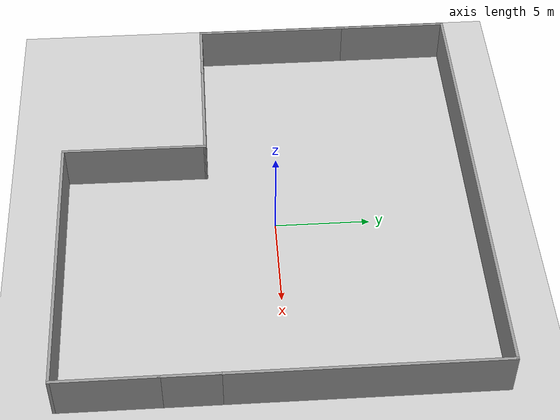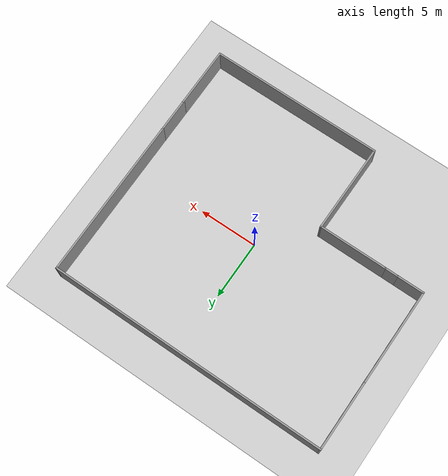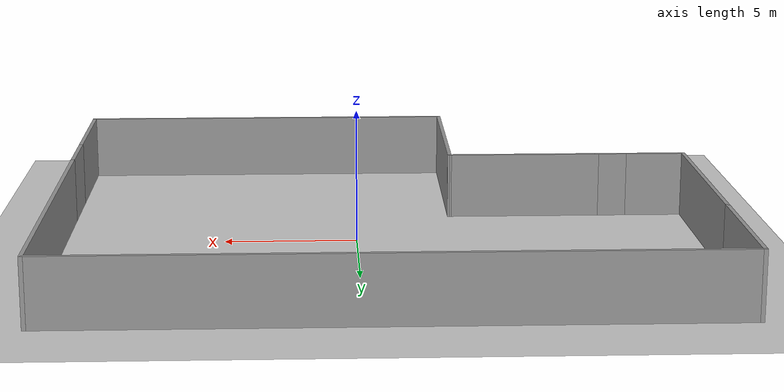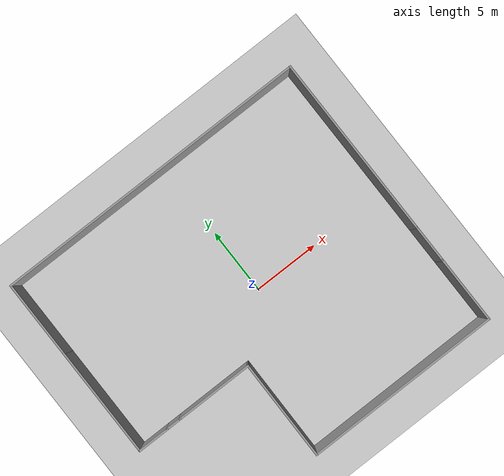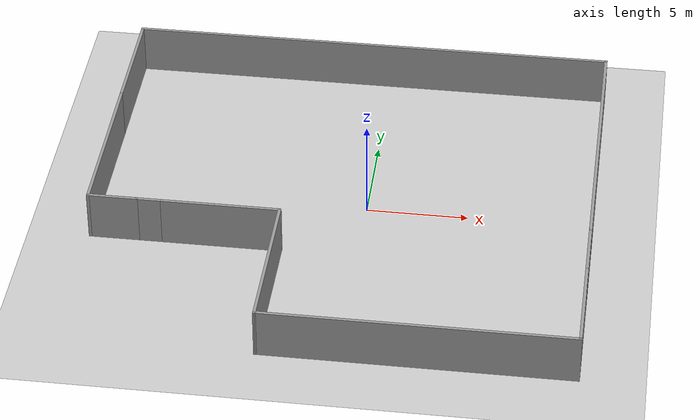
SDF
<sdf version="1.6">
 <world name="default">
  <light name="sun" type="directional">
   <pose>0 0 10 0 -0 0</pose>
   <diffuse>0.8 0.8 0.8 1</diffuse>
   <specular>0.2 0.2 0.2 1</specular>
   <attenuation>
    <range>1000</range>
    <constant>0.9</constant>
    <linear>0.01</linear>
    <quadratic>0.001</quadratic>
   </attenuation>
   <direction>-0.5 0.1 -0.9</direction>
  </light>
  <model name="ground_plane">
   <static>1</static>
   <link name="link">
    <collision name="collision">
     <geometry><plane><normal>0 0 1</normal><size>100 100</size></plane></geometry>
     <surface><friction><ode><mu>100</mu><mu2>50</mu2></ode></friction></surface>
    </collision>
    <visual name="visual">
     <cast_shadows>0</cast_shadows>
     <geometry><plane><normal>0 0 1</normal><size>100 100</size></plane></geometry>
     <material>
      <script><uri>file://media/materials/scripts/gazebo.material</uri><name>Gazebo/Grey</name></script>
     </material>
    </visual>
   </link>
  </model>
  <gravity>0 0 -9.8</gravity>
  <magnetic_field>6e-06 2.3e-05 -4.2e-05</magnetic_field>
  <atmosphere type="adiabatic"/>
  <physics name="default_physics" default="0" type="ode">
   <max_step_size>0.001</max_step_size>
   <real_time_factor>1</real_time_factor>
   <real_time_update_rate>1000</real_time_update_rate>
  </physics>
  <scene><ambient>0.4 0.4 0.4 1</ambient><background>0.7 0.7 0.7 1</background><shadows>1</shadows></scene>
  <spherical_coordinates>
   <surface_model>EARTH_WGS84</surface_model>
   <latitude_deg>0</latitude_deg>
   <longitude_deg>0</longitude_deg>
   <elevation>0</elevation>
   <heading_deg>0</heading_deg>
  </spherical_coordinates>
  <model name="build">
   <pose>-1.00536 -0.279671 0 0 -0 0</pose>
   <link name="Wall_1">
    <collision name="Wall_1_Collision">
     <geometry><box><size>6 0.15 2.5</size></box></geometry>
     <pose>0 0 1.25 0 -0 0</pose>
    </collision>
    <visual name="Wall_1_Visual">
     <pose>0 0 1.25 0 -0 0</pose>
     <geometry><box><size>6 0.15 2.5</size></box></geometry>
     <material>
      <script><uri>file://media/materials/scripts/gazebo.material</uri><name>Gazebo/Grey</name></script>
      <ambient>1 1 1 1</ambient>
     </material>
     <meta><layer>0</layer></meta>
    </visual>
    <pose>-5.675 -3.29976 0 0 -0 3.14159</pose>
   </link>
   <link name="Wall_10">
    <collision name="Wall_10_Collision">
     <geometry><box><size>24.25 0.15 2.5</size></box></geometry>
     <pose>0 0 1.25 0 -0 0</pose>
    </collision>
    <visual name="Wall_10_Visual">
     <pose>0 0 1.25 0 -0 0</pose>
     <geometry><box><size>24.25 0.15 2.5</size></box></geometry>
     <material>
      <script><uri>file://media/materials/scripts/gazebo.material</uri><name>Gazebo/Grey</name></script>
      <ambient>1 1 1 1</ambient>
     </material>
     <meta><layer>0</layer></meta>
    </visual>
    <pose>0 10.9002 0 0 -0 0</pose>
   </link>
   <link name="Wall_11">
    <collision name="Wall_11_Collision">
     <geometry><box><size>14 0.15 2.5</size></box></geometry>
     <pose>0 0 1.25 0 -0 0</pose>
    </collision>
    <visual name="Wall_11_Visual">
     <pose>0 0 1.25 0 -0 0</pose>
     <geometry><box><size>14 0.15 2.5</size></box></geometry>
     <material>
      <script><uri>file://media/materials/scripts/gazebo.material</uri><name>Gazebo/Grey</name></script>
      <ambient>1 1 1 1</ambient>
     </material>
     <meta><layer>0</layer></meta>
    </visual>
    <pose>12.05 3.97525 0 0 -0 -1.5708</pose>
   </link>
   <link name="Wall_12">
    <collision name="Wall_12_Collision">
     <geometry><box><size>3 0.15 2.5</size></box></geometry>
     <pose>0 0 1.25 0 -0 0</pose>
    </collision>
    <visual name="Wall_12_Visual">
     <pose>0 0 1.25 0 -0 0</pose>
     <geometry><box><size>3 0.15 2.5</size></box></geometry>
     <material>
      <script><uri>file://media/materials/scripts/gazebo.material</uri><name>Gazebo/Grey</name></script>
      <ambient>1 1 1 1</ambient>
     </material>
     <meta><layer>0</layer></meta>
    </visual>
    <pose>12.05 -4.37476 0 0 -0 -1.5708</pose>
   </link>
   <link name="Wall_13">
    <collision name="Wall_13_Collision">
     <geometry><box><size>5.25 0.15 2.5</size></box></geometry>
     <pose>0 0 1.25 0 -0 0</pose>
    </collision>
    <visual name="Wall_13_Visual">
     <pose>0 0 1.25 0 -0 0</pose>
     <geometry><box><size>5.25 0.15 2.5</size></box></geometry>
     <material>
      <script><uri>file://media/materials/scripts/gazebo.material</uri><name>Gazebo/Grey</name></script>
      <ambient>1 1 1 1</ambient>
     </material>
     <meta><layer>0</layer></meta>
    </visual>
    <pose>12.05 -8.34976 0 0 -0 -1.5708</pose>
   </link>
   <link name="Wall_14">
    <collision name="Wall_14_Collision">
     <geometry><box><size>15 0.15 2.5</size></box></geometry>
     <pose>0 0 1.25 0 -0 0</pose>
    </collision>
    <visual name="Wall_14_Visual">
     <pose>0 0 1.25 0 -0 0</pose>
     <geometry><box><size>15 0.15 2.5</size></box></geometry>
     <material>
      <script><uri>file://media/materials/scripts/gazebo.material</uri><name>Gazebo/Grey</name></script>
      <ambient>1 1 1 1</ambient>
     </material>
     <meta><layer>0</layer></meta>
    </visual>
    <pose>4.625 -10.8998 0 0 -0 3.14159</pose>
   </link>
   <link name="Wall_15">
    <collision name="Wall_15_Collision">
     <geometry><box><size>7.75016 0.15 2.5</size></box></geometry>
     <pose>0 0 1.25 0 -0 0</pose>
    </collision>
    <visual name="Wall_15_Visual">
     <pose>0 0 1.25 0 -0 0</pose>
     <geometry><box><size>7.75016 0.15 2.5</size></box></geometry>
     <material>
      <script><uri>file://media/materials/scripts/gazebo.material</uri><name>Gazebo/Grey</name></script>
      <ambient>1 1 1 1</ambient>
     </material>
     <meta><layer>0</layer></meta>
    </visual>
    <pose>-2.775 -7.09976 0 0 -0 1.56422</pose>
   </link>
   <link name="Wall_3">
    <collision name="Wall_3_Collision">
     <geometry><box><size>1.25 0.15 2.5</size></box></geometry>
     <pose>0 0 1.25 0 -0 0</pose>
    </collision>
    <visual name="Wall_3_Visual">
     <pose>0 0 1.25 0 -0 0</pose>
     <geometry><box><size>1.25 0.15 2.5</size></box></geometry>
     <material>
      <script><uri>file://media/materials/scripts/gazebo.material</uri><name>Gazebo/Grey</name></script>
      <ambient>1 1 1 1</ambient>
     </material>
     <meta><layer>0</layer></meta>
    </visual>
    <pose>-9.15 -3.29976 0 0 -0 3.14159</pose>
   </link>
   <link name="Wall_5">
    <collision name="Wall_5_Collision">
     <geometry><box><size>2.5 0.15 2.5</size></box></geometry>
     <pose>0 0 1.25 0 -0 0</pose>
    </collision>
    <visual name="Wall_5_Visual">
     <pose>0 0 1.25 0 -0 0</pose>
     <geometry><box><size>2.5 0.15 2.5</size></box></geometry>
     <material>
      <script><uri>file://media/materials/scripts/gazebo.material</uri><name>Gazebo/Grey</name></script>
      <ambient>1 1 1 1</ambient>
     </material>
     <meta><layer>0</layer></meta>
    </visual>
    <pose>-10.875 -3.29976 0 0 -0 3.14159</pose>
   </link>
   <link name="Wall_6">
    <collision name="Wall_6_Collision">
     <geometry><box><size>0.15 0.15 2.5</size></box></geometry>
     <pose>0 0 1.25 0 -0 0</pose>
    </collision>
    <visual name="Wall_6_Visual">
     <pose>0 0 1.25 0 -0 0</pose>
     <geometry><box><size>0.15 0.15 2.5</size></box></geometry>
     <material>
      <script><uri>file://media/materials/scripts/gazebo.material</uri><name>Gazebo/Grey</name></script>
      <ambient>1 1 1 1</ambient>
     </material>
     <meta><layer>0</layer></meta>
    </visual>
    <pose>-12.05 -3.29976 0 0 -0 0</pose>
   </link>
   <link name="Wall_7">
    <collision name="Wall_7_Collision">
     <geometry><box><size>8.5 0.15 2.5</size></box></geometry>
     <pose>0 0 1.25 0 -0 0</pose>
    </collision>
    <visual name="Wall_7_Visual">
     <pose>0 0 1.25 0 -0 0</pose>
     <geometry><box><size>8.5 0.15 2.5</size></box></geometry>
     <material>
      <script><uri>file://media/materials/scripts/gazebo.material</uri><name>Gazebo/Grey</name></script>
      <ambient>1 1 1 1</ambient>
     </material>
     <meta><layer>0</layer></meta>
    </visual>
    <pose>-12.05 0.875245 0 0 -0 1.5708</pose>
   </link>
   <link name="Wall_9">
    <collision name="Wall_9_Collision">
     <geometry><box><size>6 0.15 2.5</size></box></geometry>
     <pose>0 0 1.25 0 -0 0</pose>
    </collision>
    <visual name="Wall_9_Visual">
     <pose>0 0 1.25 0 -0 0</pose>
     <geometry><box><size>6 0.15 2.5</size></box></geometry>
     <material>
      <script><uri>file://media/materials/scripts/gazebo.material</uri><name>Gazebo/Grey</name></script>
      <ambient>1 1 1 1</ambient>
     </material>
     <meta><layer>0</layer></meta>
    </visual>
    <pose>-12.05 7.97525 0 0 -0 1.5708</pose>
   </link>
   <static>1</static>
  </model>
 </world>
</sdf>
